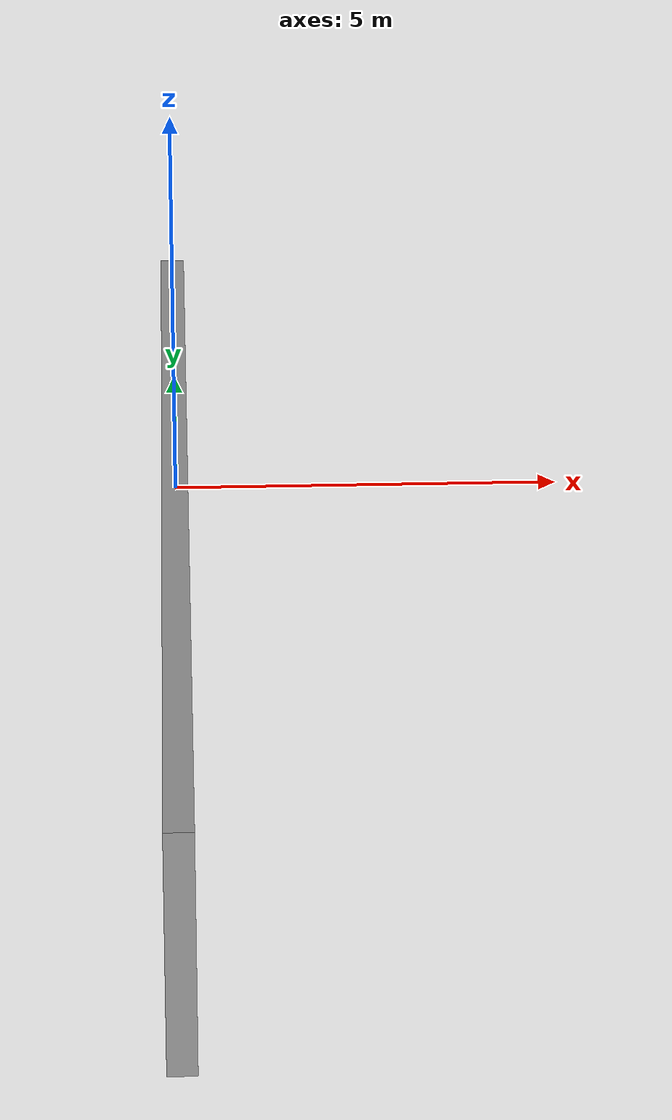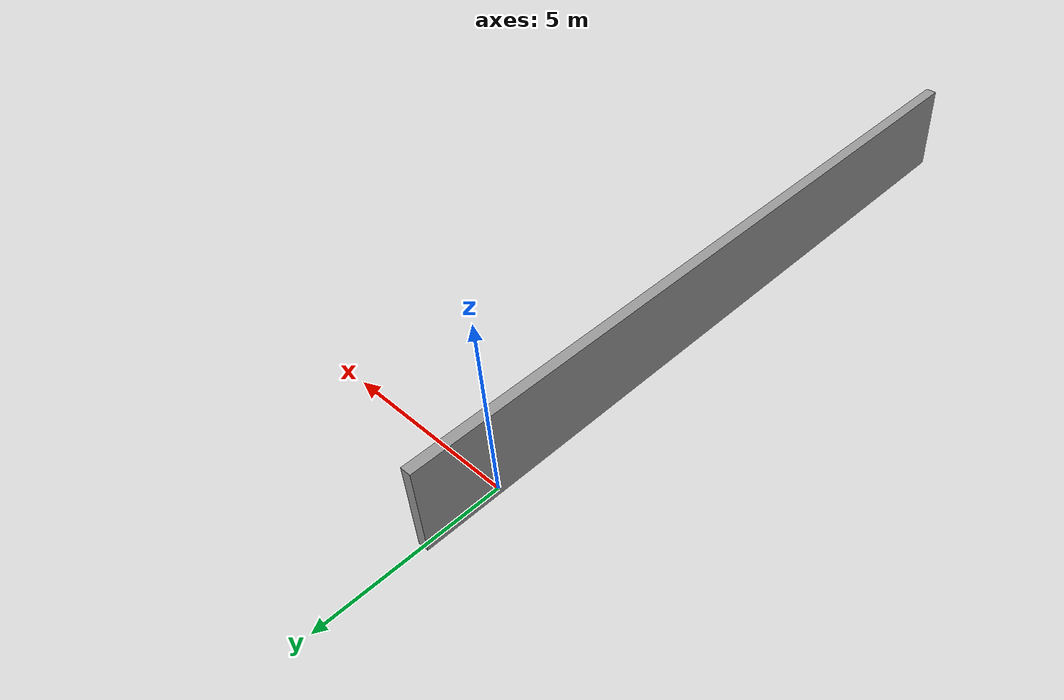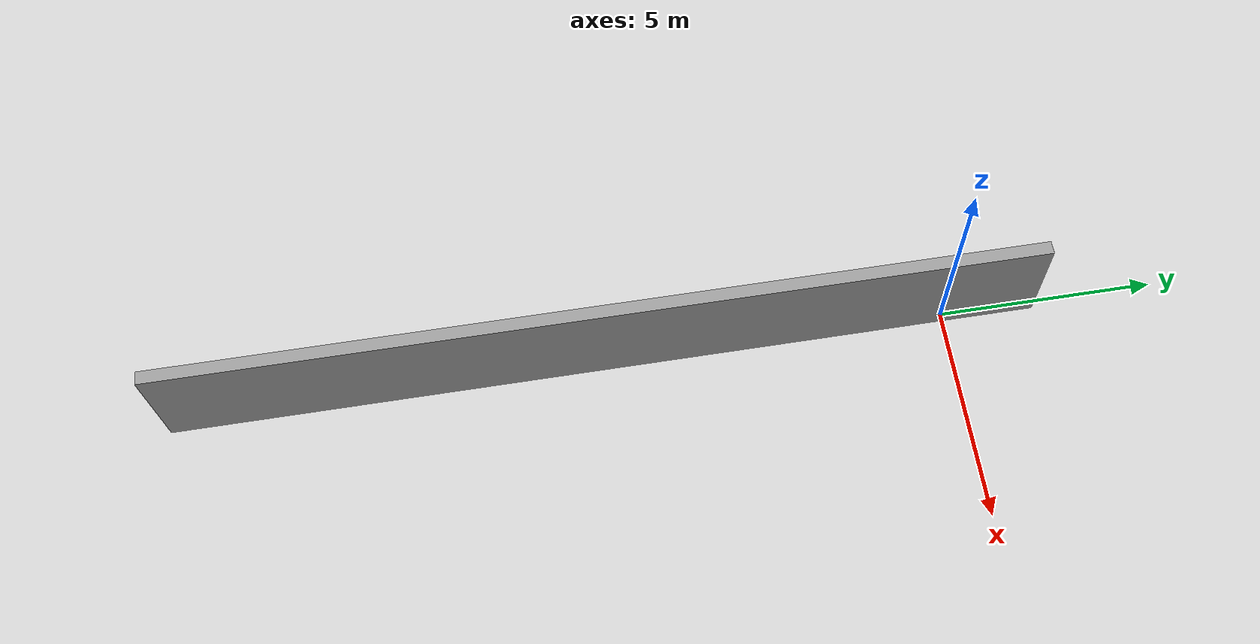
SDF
<?xml version='1.0'?>
<sdf version='1.6'>
  <model name='wall_19_03'>
    <pose frame=''>0 -7.75 0 0 -0 0</pose>
    <link name='Wall_18'>
      <collision name='Wall_18_Collision'>
        <geometry>
          <box>
            <size>19.8 0.3 2.5</size>
          </box>
        </geometry>
        <pose frame=''>0 0 1.25 0 -0 0</pose>
      </collision>
      <visual name='Wall_18_Visual'>
        <pose frame=''>0 0 1.25 0 -0 0</pose>
        <geometry>
          <box>
            <size>19.8 0.3 2.5</size>
          </box>
        </geometry>
        <material>
          <script>
            <uri>file://media/materials/scripts/gazebo.material</uri>
            <name>Gazebo/Grey</name>
          </script>
          <ambient>1 1 1 1</ambient>
        </material>
        <meta>
          <layer>0</layer>
        </meta>
      </visual>
      <pose frame=''>0 0 0 0 -0 -1.5708</pose>
    </link>
    <static>1</static>
  </model>
</sdf>
